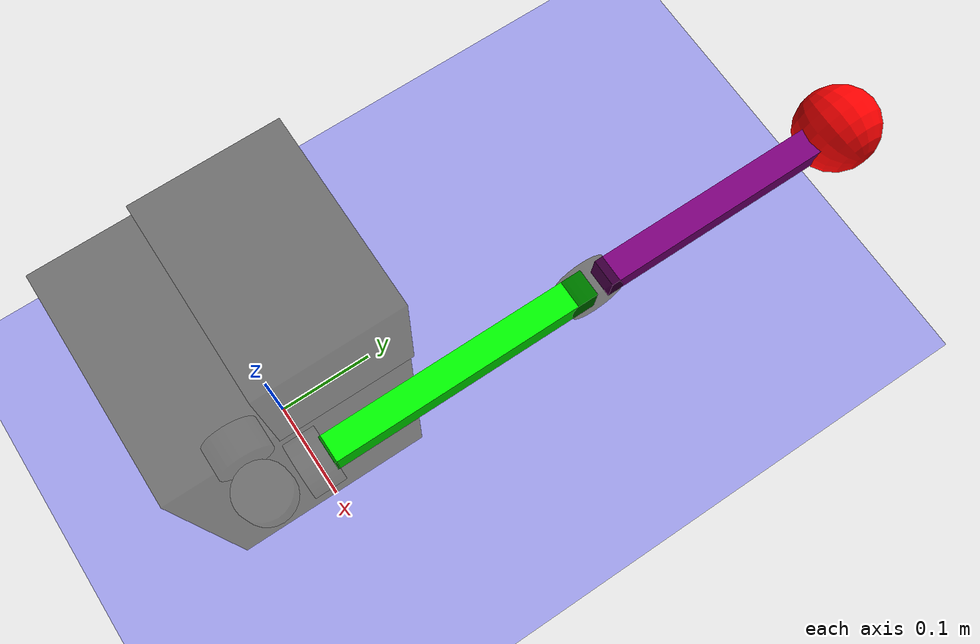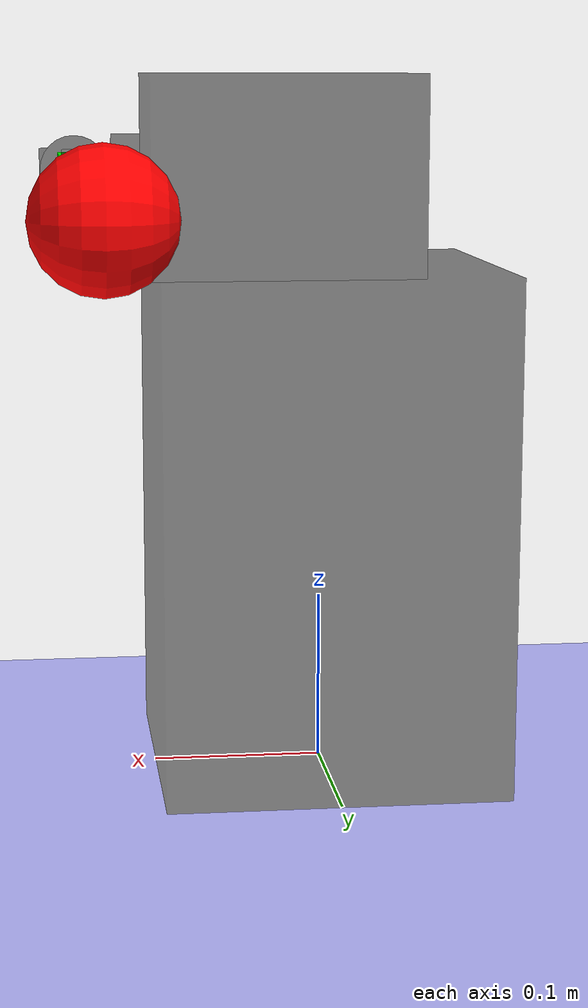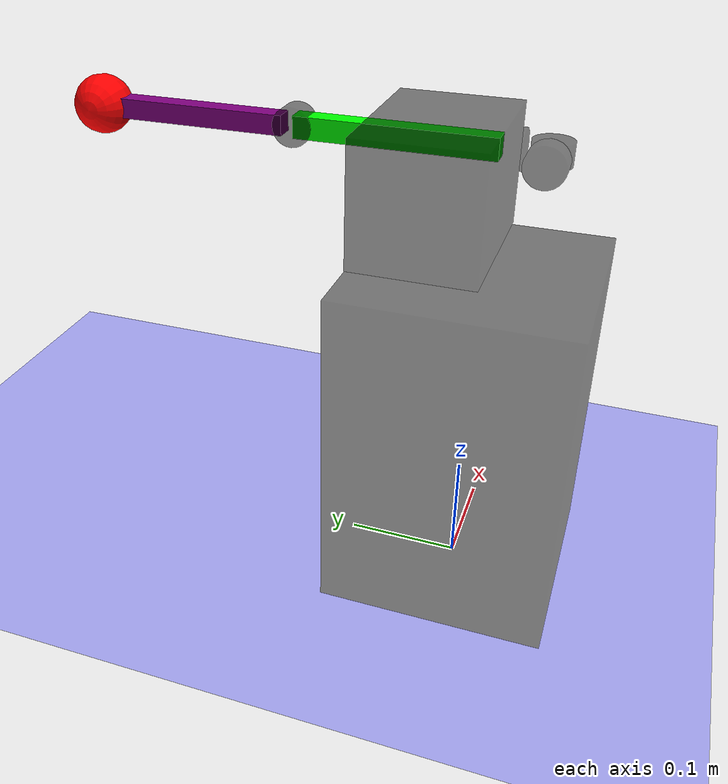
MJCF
<mujoco model="robotic_arm_with_black_links">
    <visual>
        <headlight ambient="0.5 0.5 0.5" />
    </visual>

    <asset>
        <material name="black" rgba="0 0 0 1" />
        <material name="green" rgba="0 1 0 1" />
        <material name="blue" rgba="0 0 1 1" />
        <material name="red" rgba="1 0 0 1" />
        <material name="purple" rgba="0.5 0 0.5 1" />
        <material name="white" rgba="1 1 1 1" />
    </asset>

    <option gravity="0 0 -9.81" />

    <worldbody>
        <light diffuse=".5 .5 .5" pos="0 0 3" dir="0 0 -1"/>
        <geom type="plane" size="10 10 0.1" material="blue"/>

        <body name="base" pos="0 0 0.1">
            <geom type="box" size="0.1 0.1 0.2" rgba="0 0 0 0.5"  />

            <!-- Smaller Base on Corner of Main Base -->
            <body name="smaller_base" pos="0.03 0.0455 0.255">
                <geom type="box" size="0.075 0.055 0.055" rgba="0 0 0 0.5"  />

                <!-- Shoulder Pitch -->
                <body name="shoulder_pitch" pos="0.0789 -0.0777 0" euler="0 90 0">
                    <joint name="shoulder_pitch_joint" type="hinge" axis="0 0 1" pos="0 0 0" />
                    <geom type="cylinder" size="0.0198 0.0115" rgba="0 0 0 0.5" mass="0.065" />

                    <!-- Shoulder Roll -->
                    <body name="shoulder_roll" pos="0 0 0.0341" euler="0 90 0">
                        <joint name="shoulder_roll_joint" type="hinge" axis="0 0 1" pos="0 0 0" range="-90 90"/>
                        <geom type="cylinder" size="0.0198 0.0115" rgba="0 0 0 0.5" mass="0.065" />

                        <!-- Shoulder Yaw -->
                        <body name="shoulder_yaw" pos="0 0.036 0" euler="90 0 0">
                            <joint name="shoulder_yaw_joint" type="hinge" axis="0 0 1" pos="0 0 0" />
                            <geom type="cylinder" size="0.0198 0.0115" rgba="0 0 0 0.5"  mass="0.065" />

                            <!-- Green Link 1 -->
                            <body name="link1" pos="0 0 -0.110"  euler="0 90 0">
                                <geom type="box" size="0.1 0.011 0.01" material="green" mass="0.02" />

                                <!-- Elbow Pitch -->
                                <body name="elbow_pitch" pos="0.101 0 0" euler="0 0 90">
                                    <joint name="elbow_pitch_joint" type="hinge" axis="0 0 1" pos="0 0 0" />
                                    <geom type="cylinder" size="0.0198 0.0115" rgba="0 0 0 0.5" mass="0.065" />

                                    <body name="end_effector" pos="0 -0.111 0"  euler="0 0 90">
                                        <geom type="box" size="0.1 0.01 0.01" material="purple" mass="0.05" />
                                        <geom type="sphere" size="0.03" pos="-0.1 0 -0" material="red" />
                                    </body>
                                </body>
                            </body>
                        </body>
                    </body>
                </body>
            </body>
        </body>
    </worldbody>

    <actuator>
        <motor name="shoulder_pitch_motor" joint="shoulder_pitch_joint" gear="100"/>
        <motor name="shoulder_roll_motor" joint="shoulder_roll_joint" gear="100"/>
        <motor name="shoulder_yaw_motor" joint="shoulder_yaw_joint" gear="100"/>
        <motor name="elbow_pitch_motor" joint="elbow_pitch_joint" gear="100"/>
    </actuator>
</mujoco>
